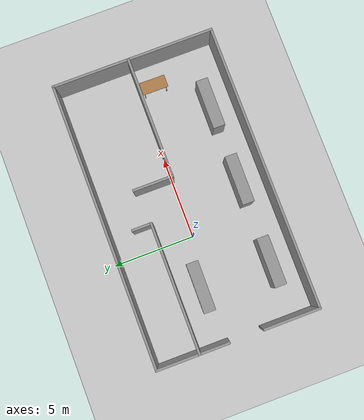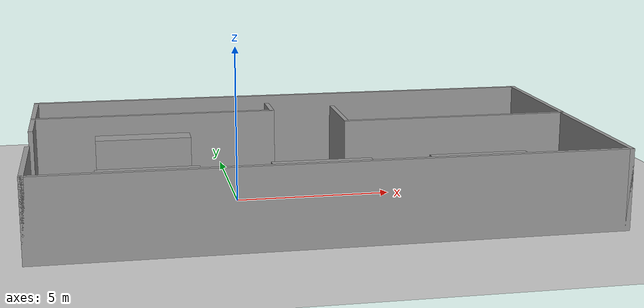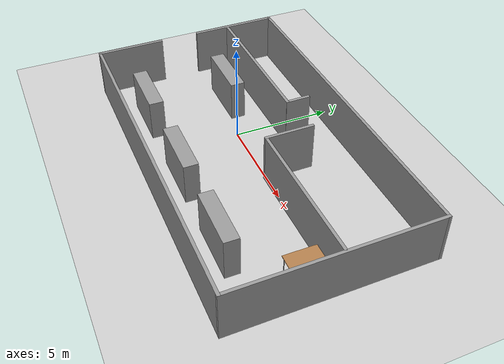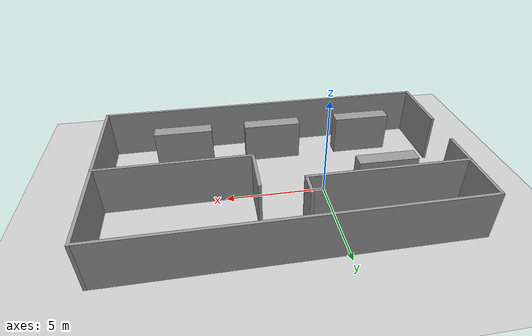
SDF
<sdf version="1.6">
 <world name="default">
  <light name="sun" type="directional">
   <pose>0 0 10 0 -0 0</pose>
   <diffuse>0.8 0.8 0.8 1</diffuse>
   <specular>0.2 0.2 0.2 1</specular>
   <attenuation>
    <range>1000</range>
    <constant>0.9</constant>
    <linear>0.01</linear>
    <quadratic>0.001</quadratic>
   </attenuation>
   <direction>-0.5 0.1 -0.9</direction>
  </light>
  <model name="ground_plane">
   <static>1</static>
   <link name="link">
    <collision name="collision">
     <geometry><plane><normal>0 0 1</normal><size>100 100</size></plane></geometry>
     <surface>
      <contact><collide_bitmask>65535</collide_bitmask></contact>
      <friction><ode><mu>100</mu><mu2>50</mu2></ode></friction>
     </surface>
    </collision>
    <visual name="visual">
     <cast_shadows>0</cast_shadows>
     <geometry><plane><normal>0 0 1</normal><size>100 100</size></plane></geometry>
     <material>
      <script><uri>file://media/materials/scripts/gazebo.material</uri><name>Gazebo/Grey</name></script>
     </material>
    </visual>
   </link>
  </model>
  <gravity>0 0 -9.8</gravity>
  <magnetic_field>6e-06 2.3e-05 -4.2e-05</magnetic_field>
  <atmosphere type="adiabatic"/>
  <physics name="default_physics" default="0" type="ode">
   <max_step_size>0.001</max_step_size>
   <real_time_factor>1</real_time_factor>
   <real_time_update_rate>1000</real_time_update_rate>
  </physics>
  <scene><ambient>0.4 0.4 0.4 1</ambient><background>0.7 0.7 0.7 1</background><shadows>1</shadows></scene>
  <audio><device>default</device></audio>
  <spherical_coordinates>
   <surface_model>EARTH_WGS84</surface_model>
   <latitude_deg>0</latitude_deg>
   <longitude_deg>0</longitude_deg>
   <elevation>0</elevation>
   <heading_deg>0</heading_deg>
  </spherical_coordinates>
  <model name="외벽">
   <pose>2.27969 -0.303444 0 0 -0 0</pose>
   <link name="Wall_1">
    <collision name="Wall_1_Collision">
     <geometry><box><size>17.5 0.15 2.5</size></box></geometry>
     <pose>0 0 1.25 0 -0 0</pose>
    </collision>
    <visual name="Wall_1_Visual">
     <pose>0 0 1.25 0 -0 0</pose>
     <geometry><box><size>17.5 0.15 2.5</size></box></geometry>
     <material>
      <script><uri>file://media/materials/scripts/gazebo.material</uri><name>Gazebo/Grey</name></script>
      <ambient>1 1 1 1</ambient>
     </material>
     <meta><layer>0</layer></meta>
    </visual>
    <pose>5.6e-05 -4.925 0 0 -0 0</pose>
   </link>
   <link name="Wall_10">
    <collision name="Wall_10_Collision">
     <geometry><box><size>1.25 0.15 2.5</size></box></geometry>
     <pose>0 0 1.25 0 -0 0</pose>
    </collision>
    <visual name="Wall_10_Visual">
     <pose>0 0 1.25 0 -0 0</pose>
     <geometry><box><size>1.25 0.15 2.5</size></box></geometry>
     <material>
      <script><uri>file://media/materials/scripts/gazebo.material</uri><name>Gazebo/Grey</name></script>
      <ambient>1 1 1 1</ambient>
     </material>
     <meta><layer>0</layer></meta>
    </visual>
    <pose>-0.825057 2.91103 0 0 -0 1.5708</pose>
   </link>
   <link name="Wall_13">
    <collision name="Wall_13_Collision">
     <geometry><box><size>2.5 0.15 2.5</size></box></geometry>
     <pose>0 0 1.25 0 -0 0</pose>
    </collision>
    <visual name="Wall_13_Visual">
     <pose>0 0 1.25 0 -0 0</pose>
     <geometry><box><size>2.5 0.15 2.5</size></box></geometry>
     <material>
      <script><uri>file://media/materials/scripts/gazebo.material</uri><name>Gazebo/Grey</name></script>
      <ambient>1 1 1 1</ambient>
     </material>
     <meta><layer>0</layer></meta>
    </visual>
    <pose>1.30982 1.4373 0 0 -0 -1.5708</pose>
   </link>
   <link name="Wall_14">
    <collision name="Wall_14_Collision">
     <geometry><box><size>7.5 0.15 2.5</size></box></geometry>
     <pose>0 0 1.25 0 -0 0</pose>
    </collision>
    <visual name="Wall_14_Visual">
     <pose>0 0 1.25 0 -0 0</pose>
     <geometry><box><size>7.5 0.15 2.5</size></box></geometry>
     <material>
      <script><uri>file://media/materials/scripts/gazebo.material</uri><name>Gazebo/Grey</name></script>
      <ambient>1 1 1 1</ambient>
     </material>
     <meta><layer>0</layer></meta>
    </visual>
    <pose>4.98482 0.262301 0 0 -0 0</pose>
   </link>
   <link name="Wall_2">
    <collision name="Wall_2_Collision">
     <geometry><box><size>10 0.15 2.5</size></box></geometry>
     <pose>0 0 1.25 0 -0 0</pose>
    </collision>
    <visual name="Wall_2_Visual">
     <pose>0 0 1.25 0 -0 0</pose>
     <geometry><box><size>10 0.15 2.5</size></box></geometry>
     <material>
      <script><uri>file://media/materials/scripts/gazebo.material</uri><name>Gazebo/Grey</name></script>
      <ambient>1 1 1 1</ambient>
     </material>
     <meta><layer>0</layer></meta>
    </visual>
    <pose>8.67506 0 0 0 -0 1.5708</pose>
   </link>
   <link name="Wall_3">
    <collision name="Wall_3_Collision">
     <geometry><box><size>17.5 0.15 2.5</size></box></geometry>
     <pose>0 0 1.25 0 -0 0</pose>
    </collision>
    <visual name="Wall_3_Visual">
     <pose>0 0 1.25 0 -0 0</pose>
     <geometry><box><size>17.5 0.15 2.5</size></box></geometry>
     <material>
      <script><uri>file://media/materials/scripts/gazebo.material</uri><name>Gazebo/Grey</name></script>
      <ambient>1 1 1 1</ambient>
     </material>
     <meta><layer>0</layer></meta>
    </visual>
    <pose>5.6e-05 4.925 0 0 -0 3.14159</pose>
   </link>
   <link name="Wall_4">
    <collision name="Wall_4_Collision">
     <geometry><box><size>4.5 0.15 2.5</size></box></geometry>
     <pose>0 0 1.25 0 -0 0</pose>
    </collision>
    <visual name="Wall_4_Visual">
     <pose>0 0 1.25 0 -0 0</pose>
     <geometry><box><size>4.5 0.15 2.5</size></box></geometry>
     <material>
      <script><uri>file://media/materials/scripts/gazebo.material</uri><name>Gazebo/Grey</name></script>
      <ambient>1 1 1 1</ambient>
     </material>
     <meta><layer>0</layer></meta>
    </visual>
    <pose>-8.67494 2.75 0 0 -0 -1.5708</pose>
   </link>
   <link name="Wall_6">
    <collision name="Wall_6_Collision">
     <geometry><box><size>3.5 0.15 2.5</size></box></geometry>
     <pose>0 0 1.25 0 -0 0</pose>
    </collision>
    <visual name="Wall_6_Visual">
     <pose>0 0 1.25 0 -0 0</pose>
     <geometry><box><size>3.5 0.15 2.5</size></box></geometry>
     <material>
      <script><uri>file://media/materials/scripts/gazebo.material</uri><name>Gazebo/Grey</name></script>
      <ambient>1 1 1 1</ambient>
     </material>
     <meta><layer>0</layer></meta>
    </visual>
    <pose>-8.67494 -3.25 0 0 -0 -1.5708</pose>
   </link>
   <link name="Wall_9">
    <collision name="Wall_9_Collision">
     <geometry><box><size>8 0.15 2.5</size></box></geometry>
     <pose>0 0 1.25 0 -0 0</pose>
    </collision>
    <visual name="Wall_9_Visual">
     <pose>0 0 1.25 0 -0 0</pose>
     <geometry><box><size>8 0.15 2.5</size></box></geometry>
     <material>
      <script><uri>file://media/materials/scripts/gazebo.material</uri><name>Gazebo/Grey</name></script>
      <ambient>1 1 1 1</ambient>
     </material>
     <meta><layer>0</layer></meta>
    </visual>
    <pose>-4.75006 2.3478 0 0 -0 0</pose>
   </link>
   <static>1</static>
  </model>
  <model name="box">
   <model name="box_0">
    <link name="link">
     <inertial>
      <mass>1.54709</mass>
      <inertia><ixx>1.74818</ixx><ixy>0</ixy><ixz>0</ixz><iyy>0.651088</iyy><iyz>0</iyz><izz>1.23298</izz></inertia>
     </inertial>
     <pose>3.71832 -1.57148 0.517731 0 0 -1.57837</pose>
     <visual name="visual">
      <geometry><box><size>0.725964 3.0061 2.12677</size></box></geometry>
      <material>
       <script><name>Gazebo/Grey</name><uri>file://media/materials/scripts/gazebo.material</uri></script>
      </material>
     </visual>
     <collision name="collision">
      <geometry><box><size>0.725964 3.0061 2.12677</size></box></geometry>
      <surface>
       <friction>
        <ode><mu>1</mu><mu2>1</mu2><fdir1>0 0 0</fdir1><slip1>0</slip1><slip2>0</slip2></ode>
        <torsional>
         <coefficient>1</coefficient>
         <patch_radius>0</patch_radius>
         <surface_radius>0</surface_radius>
         <use_patch_radius>1</use_patch_radius>
         <ode><slip>0</slip></ode>
        </torsional>
       </friction>
       <bounce><restitution_coefficient>0</restitution_coefficient><threshold>1e+06</threshold></bounce>
       <contact>
        <collide_without_contact>0</collide_without_contact>
        <collide_without_contact_bitmask>1</collide_without_contact_bitmask>
        <collide_bitmask>1</collide_bitmask>
        <ode>
         <soft_cfm>0</soft_cfm>
         <soft_erp>0.2</soft_erp>
         <kp>1e+13</kp>
         <kd>1</kd>
         <max_vel>0.01</max_vel>
         <min_depth>0</min_depth>
        </ode>
        <bullet>
         <split_impulse>1</split_impulse>
         <split_impulse_penetration_threshold>-0.01</split_impulse_penetration_threshold>
         <soft_cfm>0</soft_cfm>
         <soft_erp>0.2</soft_erp>
         <kp>1e+13</kp>
         <kd>1</kd>
        </bullet>
       </contact>
      </surface>
     </collision>
    </link>
    <static>0</static>
    <pose>-1.605 2.25772 -1e-06 0 -0 0</pose>
   </model>
   <model name="box_0_0">
    <link name="link">
     <inertial>
      <mass>1.54709</mass>
      <inertia><ixx>1.74818</ixx><ixy>0</ixy><ixz>0</ixz><iyy>0.651088</iyy><iyz>0</iyz><izz>1.23298</izz></inertia>
     </inertial>
     <pose>3.71832 -1.57148 0.517731 0 0 -1.57837</pose>
     <visual name="visual">
      <geometry><box><size>0.725964 3.0061 2.12677</size></box></geometry>
      <material>
       <script><name>Gazebo/Grey</name><uri>file://media/materials/scripts/gazebo.material</uri></script>
      </material>
     </visual>
     <collision name="collision">
      <geometry><box><size>0.725964 3.0061 2.12677</size></box></geometry>
      <surface>
       <friction>
        <ode><mu>1</mu><mu2>1</mu2><fdir1>0 0 0</fdir1><slip1>0</slip1><slip2>0</slip2></ode>
        <torsional>
         <coefficient>1</coefficient>
         <patch_radius>0</patch_radius>
         <surface_radius>0</surface_radius>
         <use_patch_radius>1</use_patch_radius>
         <ode><slip>0</slip></ode>
        </torsional>
       </friction>
       <bounce><restitution_coefficient>0</restitution_coefficient><threshold>1e+06</threshold></bounce>
       <contact>
        <collide_without_contact>0</collide_without_contact>
        <collide_without_contact_bitmask>1</collide_without_contact_bitmask>
        <collide_bitmask>1</collide_bitmask>
        <ode>
         <soft_cfm>0</soft_cfm>
         <soft_erp>0.2</soft_erp>
         <kp>1e+13</kp>
         <kd>1</kd>
         <max_vel>0.01</max_vel>
         <min_depth>0</min_depth>
        </ode>
        <bullet>
         <split_impulse>1</split_impulse>
         <split_impulse_penetration_threshold>-0.01</split_impulse_penetration_threshold>
         <soft_cfm>0</soft_cfm>
         <soft_erp>0.2</soft_erp>
         <kp>1e+13</kp>
         <kd>1</kd>
        </bullet>
       </contact>
      </surface>
     </collision>
    </link>
    <static>0</static>
    <pose>-1.65884 -2.05907 -0 0 -0 0</pose>
   </model>
   <model name="box_0_1">
    <link name="link">
     <inertial>
      <mass>1.54709</mass>
      <inertia><ixx>1.74818</ixx><ixy>0</ixy><ixz>0</ixz><iyy>0.651088</iyy><iyz>0</iyz><izz>1.23298</izz></inertia>
     </inertial>
     <pose>3.71832 -1.57148 0.517731 0 0 -1.57837</pose>
     <visual name="visual">
      <geometry><box><size>0.725964 3.0061 2.12677</size></box></geometry>
      <material>
       <script><name>Gazebo/Grey</name><uri>file://media/materials/scripts/gazebo.material</uri></script>
      </material>
     </visual>
     <collision name="collision">
      <geometry><box><size>0.725964 3.0061 2.12677</size></box></geometry>
      <surface>
       <friction>
        <ode><mu>1</mu><mu2>1</mu2><fdir1>0 0 0</fdir1><slip1>0</slip1><slip2>0</slip2></ode>
        <torsional>
         <coefficient>1</coefficient>
         <patch_radius>0</patch_radius>
         <surface_radius>0</surface_radius>
         <use_patch_radius>1</use_patch_radius>
         <ode><slip>0</slip></ode>
        </torsional>
       </friction>
       <bounce><restitution_coefficient>0</restitution_coefficient><threshold>1e+06</threshold></bounce>
       <contact>
        <collide_without_contact>0</collide_without_contact>
        <collide_without_contact_bitmask>1</collide_without_contact_bitmask>
        <collide_bitmask>1</collide_bitmask>
        <ode>
         <soft_cfm>0</soft_cfm>
         <soft_erp>0.2</soft_erp>
         <kp>1e+13</kp>
         <kd>1</kd>
         <max_vel>0.01</max_vel>
         <min_depth>0</min_depth>
        </ode>
        <bullet>
         <split_impulse>1</split_impulse>
         <split_impulse_penetration_threshold>-0.01</split_impulse_penetration_threshold>
         <soft_cfm>0</soft_cfm>
         <soft_erp>0.2</soft_erp>
         <kp>1e+13</kp>
         <kd>1</kd>
        </bullet>
       </contact>
      </surface>
     </collision>
    </link>
    <static>0</static>
    <pose>3.44009 -2.04988 2e-06 0 -0 0</pose>
   </model>
   <model name="box_0_2">
    <link name="link">
     <inertial>
      <mass>1.54709</mass>
      <inertia><ixx>1.74818</ixx><ixy>0</ixy><ixz>0</ixz><iyy>0.651088</iyy><iyz>0</iyz><izz>1.23298</izz></inertia>
     </inertial>
     <pose>3.71832 -1.57148 0.517731 0 0 -1.57837</pose>
     <visual name="visual">
      <geometry><box><size>0.725964 3.0061 2.12677</size></box></geometry>
      <material>
       <script><name>Gazebo/Grey</name><uri>file://media/materials/scripts/gazebo.material</uri></script>
      </material>
     </visual>
     <collision name="collision">
      <geometry><box><size>0.725964 3.0061 2.12677</size></box></geometry>
      <surface>
       <friction>
        <ode><mu>1</mu><mu2>1</mu2><fdir1>0 0 0</fdir1><slip1>0</slip1><slip2>0</slip2></ode>
        <torsional>
         <coefficient>1</coefficient>
         <patch_radius>0</patch_radius>
         <surface_radius>0</surface_radius>
         <use_patch_radius>1</use_patch_radius>
         <ode><slip>0</slip></ode>
        </torsional>
       </friction>
       <bounce><restitution_coefficient>0</restitution_coefficient><threshold>1e+06</threshold></bounce>
       <contact>
        <collide_without_contact>0</collide_without_contact>
        <collide_without_contact_bitmask>1</collide_without_contact_bitmask>
        <collide_bitmask>1</collide_bitmask>
        <ode>
         <soft_cfm>0</soft_cfm>
         <soft_erp>0.2</soft_erp>
         <kp>1e+13</kp>
         <kd>1</kd>
         <max_vel>0.01</max_vel>
         <min_depth>0</min_depth>
        </ode>
        <bullet>
         <split_impulse>1</split_impulse>
         <split_impulse_penetration_threshold>-0.01</split_impulse_penetration_threshold>
         <soft_cfm>0</soft_cfm>
         <soft_erp>0.2</soft_erp>
         <kp>1e+13</kp>
         <kd>1</kd>
        </bullet>
       </contact>
      </surface>
     </collision>
    </link>
    <static>0</static>
    <pose>8.24553 -2.06253 3e-06 0 -0 0</pose>
   </model>
   <static>0</static>
   <pose>-5.03579 -0.044978 0.5 0 -0 0</pose>
  </model>
  <model name="counter_table">
   <link name="link">
    <pose>1.01847 -0.352299 0 0 -0 1.56222</pose>
    <visual name="front_right_leg">
     <pose>0.68 -0.38 0.5 0 -0 0</pose>
     <geometry><cylinder><radius>0.02</radius><length>0.9</length></cylinder></geometry>
     <material>
      <script><uri>file://media/materials/scripts/gazebo.material</uri><name>Gazebo/Grey</name></script>
     </material>
    </visual>
    <visual name="back_right_leg">
     <pose>-0.68 -0.38 0.5 0 -0 0</pose>
     <geometry><cylinder><radius>0.02</radius><length>0.9</length></cylinder></geometry>
     <material>
      <script><uri>file://media/materials/scripts/gazebo.material</uri><name>Gazebo/Grey</name></script>
     </material>
    </visual>
    <visual name="visual1">
     <pose>0 0 0.95 0 -0 0</pose>
     <geometry><box><size>1.6 0.77 0.03</size></box></geometry>
     <material>
      <script><uri>file://media/materials/scripts/gazebo.material</uri><name>Gazebo/Wood</name></script>
     </material>
    </visual>
    <visual name="back_left_leg">
     <pose>-0.68 0.38 0.5 0 -0 0</pose>
     <geometry><cylinder><radius>0.02</radius><length>0.9</length></cylinder></geometry>
     <material>
      <script><uri>file://media/materials/scripts/gazebo.material</uri><name>Gazebo/Grey</name></script>
     </material>
    </visual>
    <visual name="front_left_leg">
     <pose>0.68 0.38 0.5 0 -0 0</pose>
     <geometry><cylinder><radius>0.02</radius><length>0.9</length></cylinder></geometry>
     <material>
      <script><uri>file://media/materials/scripts/gazebo.material</uri><name>Gazebo/Grey</name></script>
     </material>
    </visual>
    <collision name="surface">
     <pose>0 0 0.95 0 -0 0</pose>
     <geometry><box><size>1.6 0.77 0.03</size></box></geometry>
     <surface>
      <friction>
       <ode><mu>0.6</mu><mu2>0.6</mu2><fdir1>0 0 0</fdir1><slip1>0</slip1><slip2>0</slip2></ode>
       <torsional>
        <coefficient>1</coefficient>
        <patch_radius>0</patch_radius>
        <surface_radius>0</surface_radius>
        <use_patch_radius>1</use_patch_radius>
        <ode><slip>0</slip></ode>
       </torsional>
      </friction>
      <bounce><restitution_coefficient>0</restitution_coefficient><threshold>1e+06</threshold></bounce>
      <contact>
       <collide_without_contact>0</collide_without_contact>
       <collide_without_contact_bitmask>1</collide_without_contact_bitmask>
       <collide_bitmask>1</collide_bitmask>
       <ode>
        <soft_cfm>0</soft_cfm>
        <soft_erp>0.2</soft_erp>
        <kp>1e+13</kp>
        <kd>1</kd>
        <max_vel>0.01</max_vel>
        <min_depth>0</min_depth>
       </ode>
       <bullet>
        <split_impulse>1</split_impulse>
        <split_impulse_penetration_threshold>-0.01</split_impulse_penetration_threshold>
        <soft_cfm>0</soft_cfm>
        <soft_erp>0.2</soft_erp>
        <kp>1e+13</kp>
        <kd>1</kd>
       </bullet>
      </contact>
     </surface>
    </collision>
    <collision name="back_left_leg">
     <pose>-0.68 0.38 0.5 0 -0 0</pose>
     <geometry><cylinder><radius>0.02</radius><length>0.9</length></cylinder></geometry>
     <surface>
      <friction>
       <ode><mu>1</mu><mu2>1</mu2><fdir1>0 0 0</fdir1><slip1>0</slip1><slip2>0</slip2></ode>
       <torsional>
        <coefficient>1</coefficient>
        <patch_radius>0</patch_radius>
        <surface_radius>0</surface_radius>
        <use_patch_radius>1</use_patch_radius>
        <ode><slip>0</slip></ode>
       </torsional>
      </friction>
      <bounce><restitution_coefficient>0</restitution_coefficient><threshold>1e+06</threshold></bounce>
      <contact>
       <collide_without_contact>0</collide_without_contact>
       <collide_without_contact_bitmask>1</collide_without_contact_bitmask>
       <collide_bitmask>1</collide_bitmask>
       <ode>
        <soft_cfm>0</soft_cfm>
        <soft_erp>0.2</soft_erp>
        <kp>1e+13</kp>
        <kd>1</kd>
        <max_vel>0.01</max_vel>
        <min_depth>0</min_depth>
       </ode>
       <bullet>
        <split_impulse>1</split_impulse>
        <split_impulse_penetration_threshold>-0.01</split_impulse_penetration_threshold>
        <soft_cfm>0</soft_cfm>
        <soft_erp>0.2</soft_erp>
        <kp>1e+13</kp>
        <kd>1</kd>
       </bullet>
      </contact>
     </surface>
    </collision>
    <collision name="front_right_leg">
     <pose>0.68 -0.38 0.5 0 -0 0</pose>
     <geometry><cylinder><radius>0.02</radius><length>0.9</length></cylinder></geometry>
     <surface>
      <friction>
       <ode><mu>1</mu><mu2>1</mu2><fdir1>0 0 0</fdir1><slip1>0</slip1><slip2>0</slip2></ode>
       <torsional>
        <coefficient>1</coefficient>
        <patch_radius>0</patch_radius>
        <surface_radius>0</surface_radius>
        <use_patch_radius>1</use_patch_radius>
        <ode><slip>0</slip></ode>
       </torsional>
      </friction>
      <bounce><restitution_coefficient>0</restitution_coefficient><threshold>1e+06</threshold></bounce>
      <contact>
       <collide_without_contact>0</collide_without_contact>
       <collide_without_contact_bitmask>1</collide_without_contact_bitmask>
       <collide_bitmask>1</collide_bitmask>
       <ode>
        <soft_cfm>0</soft_cfm>
        <soft_erp>0.2</soft_erp>
        <kp>1e+13</kp>
        <kd>1</kd>
        <max_vel>0.01</max_vel>
        <min_depth>0</min_depth>
       </ode>
       <bullet>
        <split_impulse>1</split_impulse>
        <split_impulse_penetration_threshold>-0.01</split_impulse_penetration_threshold>
        <soft_cfm>0</soft_cfm>
        <soft_erp>0.2</soft_erp>
        <kp>1e+13</kp>
        <kd>1</kd>
       </bullet>
      </contact>
     </surface>
    </collision>
    <collision name="front_left_leg">
     <pose>0.68 0.38 0.5 0 -0 0</pose>
     <geometry><cylinder><radius>0.02</radius><length>0.9</length></cylinder></geometry>
     <surface>
      <friction>
       <ode><mu>1</mu><mu2>1</mu2><fdir1>0 0 0</fdir1><slip1>0</slip1><slip2>0</slip2></ode>
       <torsional>
        <coefficient>1</coefficient>
        <patch_radius>0</patch_radius>
        <surface_radius>0</surface_radius>
        <use_patch_radius>1</use_patch_radius>
        <ode><slip>0</slip></ode>
       </torsional>
      </friction>
      <bounce><restitution_coefficient>0</restitution_coefficient><threshold>1e+06</threshold></bounce>
      <contact>
       <collide_without_contact>0</collide_without_contact>
       <collide_without_contact_bitmask>1</collide_without_contact_bitmask>
       <collide_bitmask>1</collide_bitmask>
       <ode>
        <soft_cfm>0</soft_cfm>
        <soft_erp>0.2</soft_erp>
        <kp>1e+13</kp>
        <kd>1</kd>
        <max_vel>0.01</max_vel>
        <min_depth>0</min_depth>
       </ode>
       <bullet>
        <split_impulse>1</split_impulse>
        <split_impulse_penetration_threshold>-0.01</split_impulse_penetration_threshold>
        <soft_cfm>0</soft_cfm>
        <soft_erp>0.2</soft_erp>
        <kp>1e+13</kp>
        <kd>1</kd>
       </bullet>
      </contact>
     </surface>
    </collision>
    <collision name="back_right_leg">
     <pose>-0.68 -0.38 0.5 0 -0 0</pose>
     <geometry><cylinder><radius>0.02</radius><length>0.9</length></cylinder></geometry>
     <surface>
      <friction>
       <ode><mu>1</mu><mu2>1</mu2><fdir1>0 0 0</fdir1><slip1>0</slip1><slip2>0</slip2></ode>
       <torsional>
        <coefficient>1</coefficient>
        <patch_radius>0</patch_radius>
        <surface_radius>0</surface_radius>
        <use_patch_radius>1</use_patch_radius>
        <ode><slip>0</slip></ode>
       </torsional>
      </friction>
      <bounce><restitution_coefficient>0</restitution_coefficient><threshold>1e+06</threshold></bounce>
      <contact>
       <collide_without_contact>0</collide_without_contact>
       <collide_without_contact_bitmask>1</collide_without_contact_bitmask>
       <collide_bitmask>1</collide_bitmask>
       <ode>
        <soft_cfm>0</soft_cfm>
        <soft_erp>0.2</soft_erp>
        <kp>1e+13</kp>
        <kd>1</kd>
        <max_vel>0.01</max_vel>
        <min_depth>0</min_depth>
       </ode>
       <bullet>
        <split_impulse>1</split_impulse>
        <split_impulse_penetration_threshold>-0.01</split_impulse_penetration_threshold>
        <soft_cfm>0</soft_cfm>
        <soft_erp>0.2</soft_erp>
        <kp>1e+13</kp>
        <kd>1</kd>
       </bullet>
      </contact>
     </surface>
    </collision>
   </link>
   <static>1</static>
   <pose>8.38776 -0.631873 0 0 -0 0</pose>
  </model>
 </world>
</sdf>
